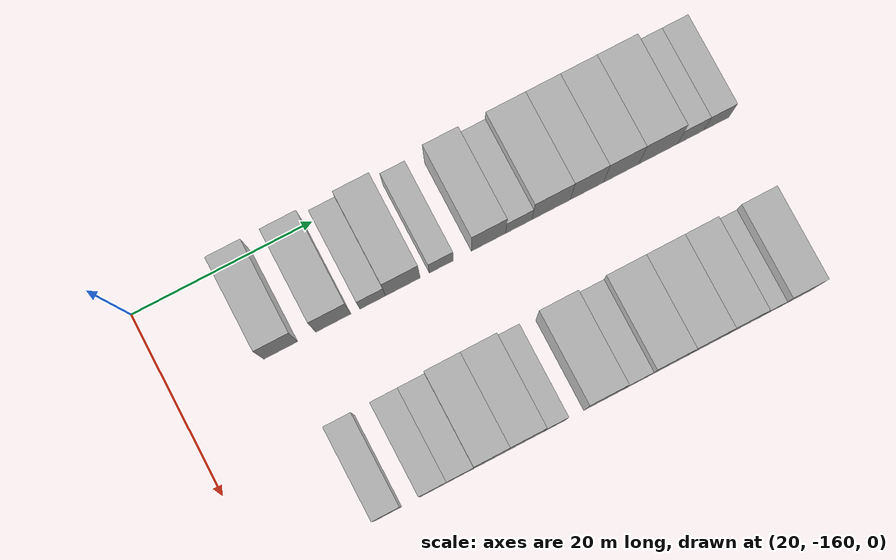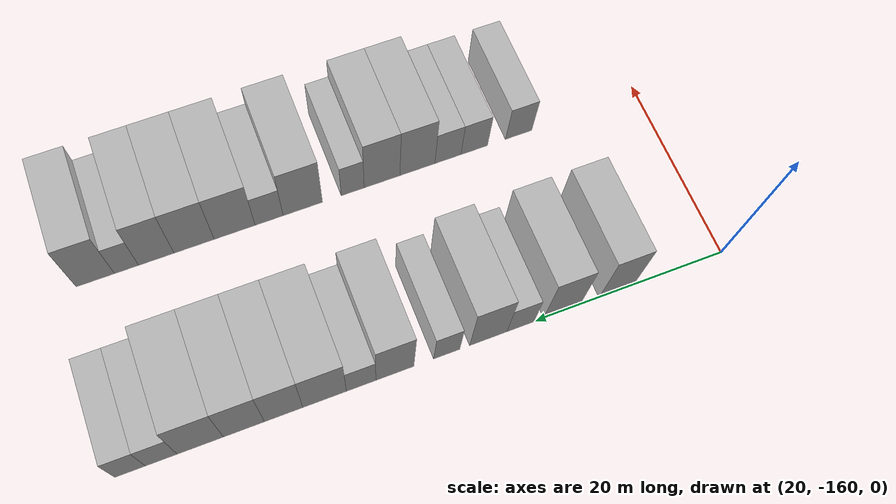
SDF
<sdf version="1.6">
 <world name="default">
  <model name="building_14">
   <static>1</static>
   <pose>25.0000 -148.5535 0 0.000000 0.000000 0.000000</pose>
   <link name="link">
    <pose>0 0 4.50 0 0 0</pose>
    <collision name="collision"><geometry><box><size>10.0000 3.7188 9.0000</size></box></geometry></collision>
    <visual name="visual">
     <cast_shadows>0</cast_shadows>
     <geometry><box><size>10.0000 3.7188 9.0000</size></box></geometry>
     <material>
      <script>
       <uri>model://HANNAS_wall/materials/scripts</uri>
       <uri>model://HANNAS_wall/materials/textures</uri>
       <name>vrc/HANNAS_wall</name>
      </script>
     </material>
    </visual>
   </link>
  </model>
  <model name="building_15">
   <static>1</static>
   <pose>25.0000 -142.7608 0 0.000000 0.000000 0.000000</pose>
   <link name="link">
    <pose>0 0 4.50 0 0 0</pose>
    <collision name="collision"><geometry><box><size>10.0000 3.8666 9.0000</size></box></geometry></collision>
    <visual name="visual">
     <cast_shadows>0</cast_shadows>
     <geometry><box><size>10.0000 3.8666 9.0000</size></box></geometry>
     <material>
      <script>
       <uri>model://HANNAS_wall/materials/scripts</uri>
       <uri>model://HANNAS_wall/materials/textures</uri>
       <name>vrc/HANNAS_wall</name>
      </script>
     </material>
    </visual>
   </link>
  </model>
  <model name="building_16">
   <static>1</static>
   <pose>25.0000 -138.4152 0 0.000000 0.000000 0.000000</pose>
   <link name="link">
    <pose>0 0 3.00 0 0 0</pose>
    <collision name="collision"><geometry><box><size>10.0000 2.8246 6.0000</size></box></geometry></collision>
    <visual name="visual">
     <cast_shadows>0</cast_shadows>
     <geometry><box><size>10.0000 2.8246 6.0000</size></box></geometry>
     <material>
      <script>
       <uri>model://HANNAS_wall/materials/scripts</uri>
       <uri>model://HANNAS_wall/materials/textures</uri>
       <name>vrc/HANNAS_wall</name>
      </script>
     </material>
    </visual>
   </link>
  </model>
  <model name="building_17">
   <static>1</static>
   <pose>25.0000 -135.0712 0 0.000000 0.000000 0.000000</pose>
   <link name="link">
    <pose>0 0 4.50 0 0 0</pose>
    <collision name="collision"><geometry><box><size>10.0000 3.8633 9.0000</size></box></geometry></collision>
    <visual name="visual">
     <cast_shadows>0</cast_shadows>
     <geometry><box><size>10.0000 3.8633 9.0000</size></box></geometry>
     <material>
      <script>
       <uri>model://HANNAS_wall/materials/scripts</uri>
       <uri>model://HANNAS_wall/materials/textures</uri>
       <name>vrc/HANNAS_wall</name>
      </script>
     </material>
    </visual>
   </link>
  </model>
  <model name="building_18">
   <static>1</static>
   <pose>25.0000 -130.7995 0 0.000000 0.000000 0.000000</pose>
   <link name="link">
    <pose>0 0 3.00 0 0 0</pose>
    <collision name="collision"><geometry><box><size>10.0000 2.6801 6.0000</size></box></geometry></collision>
    <visual name="visual">
     <cast_shadows>0</cast_shadows>
     <geometry><box><size>10.0000 2.6801 6.0000</size></box></geometry>
     <material>
      <script>
       <uri>model://HANNAS_wall/materials/scripts</uri>
       <uri>model://HANNAS_wall/materials/textures</uri>
       <name>vrc/HANNAS_wall</name>
      </script>
     </material>
    </visual>
   </link>
  </model>
  <model name="building_19">
   <static>1</static>
   <pose>25.0000 -125.5500 0 0.000000 0.000000 0.000000</pose>
   <link name="link">
    <pose>0 0 4.50 0 0 0</pose>
    <collision name="collision"><geometry><box><size>10.0000 3.8190 9.0000</size></box></geometry></collision>
    <visual name="visual">
     <cast_shadows>0</cast_shadows>
     <geometry><box><size>10.0000 3.8190 9.0000</size></box></geometry>
     <material>
      <script>
       <uri>model://HANNAS_wall/materials/scripts</uri>
       <uri>model://HANNAS_wall/materials/textures</uri>
       <name>vrc/HANNAS_wall</name>
      </script>
     </material>
    </visual>
   </link>
  </model>
  <model name="building_20">
   <static>1</static>
   <pose>25.0000 -122.1705 0 0.000000 0.000000 0.000000</pose>
   <link name="link">
    <pose>0 0 3.00 0 0 0</pose>
    <collision name="collision"><geometry><box><size>10.0000 2.9399 6.0000</size></box></geometry></collision>
    <visual name="visual">
     <cast_shadows>0</cast_shadows>
     <geometry><box><size>10.0000 2.9399 6.0000</size></box></geometry>
     <material>
      <script>
       <uri>model://HANNAS_wall/materials/scripts</uri>
       <uri>model://HANNAS_wall/materials/textures</uri>
       <name>vrc/HANNAS_wall</name>
      </script>
     </material>
    </visual>
   </link>
  </model>
  <model name="building_21">
   <static>1</static>
   <pose>25.0000 -118.5584 0 0.000000 0.000000 0.000000</pose>
   <link name="link">
    <pose>0 0 4.50 0 0 0</pose>
    <collision name="collision"><geometry><box><size>10.0000 4.2843 9.0000</size></box></geometry></collision>
    <visual name="visual">
     <cast_shadows>0</cast_shadows>
     <geometry><box><size>10.0000 4.2843 9.0000</size></box></geometry>
     <material>
      <script>
       <uri>model://HANNAS_wall/materials/scripts</uri>
       <uri>model://HANNAS_wall/materials/textures</uri>
       <name>vrc/HANNAS_wall</name>
      </script>
     </material>
    </visual>
   </link>
  </model>
  <model name="building_22">
   <static>1</static>
   <pose>25.0000 -114.5460 0 0.000000 0.000000 0.000000</pose>
   <link name="link">
    <pose>0 0 4.50 0 0 0</pose>
    <collision name="collision"><geometry><box><size>10.0000 3.7405 9.0000</size></box></geometry></collision>
    <visual name="visual">
     <cast_shadows>0</cast_shadows>
     <geometry><box><size>10.0000 3.7405 9.0000</size></box></geometry>
     <material>
      <script>
       <uri>model://HANNAS_wall/materials/scripts</uri>
       <uri>model://HANNAS_wall/materials/textures</uri>
       <name>vrc/HANNAS_wall</name>
      </script>
     </material>
    </visual>
   </link>
  </model>
  <model name="building_23">
   <static>1</static>
   <pose>25.0000 -110.7014 0 0.000000 0.000000 0.000000</pose>
   <link name="link">
    <pose>0 0 4.50 0 0 0</pose>
    <collision name="collision"><geometry><box><size>10.0000 3.9487 9.0000</size></box></geometry></collision>
    <visual name="visual">
     <cast_shadows>0</cast_shadows>
     <geometry><box><size>10.0000 3.9487 9.0000</size></box></geometry>
     <material>
      <script>
       <uri>model://HANNAS_wall/materials/scripts</uri>
       <uri>model://HANNAS_wall/materials/textures</uri>
       <name>vrc/HANNAS_wall</name>
      </script>
     </material>
    </visual>
   </link>
  </model>
  <model name="building_24">
   <static>1</static>
   <pose>25.0000 -106.5193 0 0.000000 0.000000 0.000000</pose>
   <link name="link">
    <pose>0 0 4.50 0 0 0</pose>
    <collision name="collision"><geometry><box><size>10.0000 4.4155 9.0000</size></box></geometry></collision>
    <visual name="visual">
     <cast_shadows>0</cast_shadows>
     <geometry><box><size>10.0000 4.4155 9.0000</size></box></geometry>
     <material>
      <script>
       <uri>model://HANNAS_wall/materials/scripts</uri>
       <uri>model://HANNAS_wall/materials/textures</uri>
       <name>vrc/HANNAS_wall</name>
      </script>
     </material>
    </visual>
   </link>
  </model>
  <model name="building_25">
   <static>1</static>
   <pose>25.0000 -102.8213 0 0.000000 0.000000 0.000000</pose>
   <link name="link">
    <pose>0 0 3.00 0 0 0</pose>
    <collision name="collision"><geometry><box><size>10.0000 2.9803 6.0000</size></box></geometry></collision>
    <visual name="visual">
     <cast_shadows>0</cast_shadows>
     <geometry><box><size>10.0000 2.9803 6.0000</size></box></geometry>
     <material>
      <script>
       <uri>model://HANNAS_wall/materials/scripts</uri>
       <uri>model://HANNAS_wall/materials/textures</uri>
       <name>vrc/HANNAS_wall</name>
      </script>
     </material>
    </visual>
   </link>
  </model>
  <model name="building_26">
   <static>1</static>
   <pose>25.0000 -99.8959 0 0.000000 0.000000 0.000000</pose>
   <link name="link">
    <pose>0 0 3.00 0 0 0</pose>
    <collision name="collision"><geometry><box><size>10.0000 2.8706 6.0000</size></box></geometry></collision>
    <visual name="visual">
     <cast_shadows>0</cast_shadows>
     <geometry><box><size>10.0000 2.8706 6.0000</size></box></geometry>
     <material>
      <script>
       <uri>model://HANNAS_wall/materials/scripts</uri>
       <uri>model://HANNAS_wall/materials/textures</uri>
       <name>vrc/HANNAS_wall</name>
      </script>
     </material>
    </visual>
   </link>
  </model>
  <model name="building_117">
   <static>1</static>
   <pose>44.0000 -146.5435 0 0.000000 0.000000 0.000000</pose>
   <link name="link">
    <pose>0 0 3.00 0 0 0</pose>
    <collision name="collision"><geometry><box><size>10.0000 2.9709 6.0000</size></box></geometry></collision>
    <visual name="visual">
     <cast_shadows>0</cast_shadows>
     <geometry><box><size>10.0000 2.9709 6.0000</size></box></geometry>
     <material>
      <script>
       <uri>model://HANNAS_wall/materials/scripts</uri>
       <uri>model://HANNAS_wall/materials/textures</uri>
       <name>vrc/HANNAS_wall</name>
      </script>
     </material>
    </visual>
   </link>
  </model>
  <model name="building_118">
   <static>1</static>
   <pose>44.0000 -141.5828 0 0.000000 0.000000 0.000000</pose>
   <link name="link">
    <pose>0 0 3.00 0 0 0</pose>
    <collision name="collision"><geometry><box><size>10.0000 2.9506 6.0000</size></box></geometry></collision>
    <visual name="visual">
     <cast_shadows>0</cast_shadows>
     <geometry><box><size>10.0000 2.9506 6.0000</size></box></geometry>
     <material>
      <script>
       <uri>model://HANNAS_wall/materials/scripts</uri>
       <uri>model://HANNAS_wall/materials/textures</uri>
       <name>vrc/HANNAS_wall</name>
      </script>
     </material>
    </visual>
   </link>
  </model>
  <model name="building_119">
   <static>1</static>
   <pose>44.0000 -138.6603 0 0.000000 0.000000 0.000000</pose>
   <link name="link">
    <pose>0 0 3.00 0 0 0</pose>
    <collision name="collision"><geometry><box><size>10.0000 2.8942 6.0000</size></box></geometry></collision>
    <visual name="visual">
     <cast_shadows>0</cast_shadows>
     <geometry><box><size>10.0000 2.8942 6.0000</size></box></geometry>
     <material>
      <script>
       <uri>model://HANNAS_wall/materials/scripts</uri>
       <uri>model://HANNAS_wall/materials/textures</uri>
       <name>vrc/HANNAS_wall</name>
      </script>
     </material>
    </visual>
   </link>
  </model>
  <model name="building_120">
   <static>1</static>
   <pose>44.0000 -135.2993 0 0.000000 0.000000 0.000000</pose>
   <link name="link">
    <pose>0 0 4.50 0 0 0</pose>
    <collision name="collision"><geometry><box><size>10.0000 3.8279 9.0000</size></box></geometry></collision>
    <visual name="visual">
     <cast_shadows>0</cast_shadows>
     <geometry><box><size>10.0000 3.8279 9.0000</size></box></geometry>
     <material>
      <script>
       <uri>model://HANNAS_wall/materials/scripts</uri>
       <uri>model://HANNAS_wall/materials/textures</uri>
       <name>vrc/HANNAS_wall</name>
      </script>
     </material>
    </visual>
   </link>
  </model>
  <model name="building_121">
   <static>1</static>
   <pose>44.0000 -131.4509 0 0.000000 0.000000 0.000000</pose>
   <link name="link">
    <pose>0 0 4.50 0 0 0</pose>
    <collision name="collision"><geometry><box><size>10.0000 3.8688 9.0000</size></box></geometry></collision>
    <visual name="visual">
     <cast_shadows>0</cast_shadows>
     <geometry><box><size>10.0000 3.8688 9.0000</size></box></geometry>
     <material>
      <script>
       <uri>model://HANNAS_wall/materials/scripts</uri>
       <uri>model://HANNAS_wall/materials/textures</uri>
       <name>vrc/HANNAS_wall</name>
      </script>
     </material>
    </visual>
   </link>
  </model>
  <model name="building_122">
   <static>1</static>
   <pose>44.0000 -128.2875 0 0.000000 0.000000 0.000000</pose>
   <link name="link">
    <pose>0 0 3.00 0 0 0</pose>
    <collision name="collision"><geometry><box><size>10.0000 2.4580 6.0000</size></box></geometry></collision>
    <visual name="visual">
     <cast_shadows>0</cast_shadows>
     <geometry><box><size>10.0000 2.4580 6.0000</size></box></geometry>
     <material>
      <script>
       <uri>model://HANNAS_wall/materials/scripts</uri>
       <uri>model://HANNAS_wall/materials/textures</uri>
       <name>vrc/HANNAS_wall</name>
      </script>
     </material>
    </visual>
   </link>
  </model>
  <model name="building_123">
   <static>1</static>
   <pose>44.0000 -122.9733 0 0.000000 0.000000 0.000000</pose>
   <link name="link">
    <pose>0 0 4.50 0 0 0</pose>
    <collision name="collision"><geometry><box><size>10.0000 4.1703 9.0000</size></box></geometry></collision>
    <visual name="visual">
     <cast_shadows>0</cast_shadows>
     <geometry><box><size>10.0000 4.1703 9.0000</size></box></geometry>
     <material>
      <script>
       <uri>model://HANNAS_wall/materials/scripts</uri>
       <uri>model://HANNAS_wall/materials/textures</uri>
       <name>vrc/HANNAS_wall</name>
      </script>
     </material>
    </visual>
   </link>
  </model>
  <model name="building_124">
   <static>1</static>
   <pose>44.0000 -119.4177 0 0.000000 0.000000 0.000000</pose>
   <link name="link">
    <pose>0 0 3.00 0 0 0</pose>
    <collision name="collision"><geometry><box><size>10.0000 2.9409 6.0000</size></box></geometry></collision>
    <visual name="visual">
     <cast_shadows>0</cast_shadows>
     <geometry><box><size>10.0000 2.9409 6.0000</size></box></geometry>
     <material>
      <script>
       <uri>model://HANNAS_wall/materials/scripts</uri>
       <uri>model://HANNAS_wall/materials/textures</uri>
       <name>vrc/HANNAS_wall</name>
      </script>
     </material>
    </visual>
   </link>
  </model>
  <model name="building_125">
   <static>1</static>
   <pose>44.0000 -115.8198 0 0.000000 0.000000 0.000000</pose>
   <link name="link">
    <pose>0 0 4.50 0 0 0</pose>
    <collision name="collision"><geometry><box><size>10.0000 4.2550 9.0000</size></box></geometry></collision>
    <visual name="visual">
     <cast_shadows>0</cast_shadows>
     <geometry><box><size>10.0000 4.2550 9.0000</size></box></geometry>
     <material>
      <script>
       <uri>model://HANNAS_wall/materials/scripts</uri>
       <uri>model://HANNAS_wall/materials/textures</uri>
       <name>vrc/HANNAS_wall</name>
      </script>
     </material>
    </visual>
   </link>
  </model>
  <model name="building_126">
   <static>1</static>
   <pose>44.0000 -111.6314 0 0.000000 0.000000 0.000000</pose>
   <link name="link">
    <pose>0 0 4.50 0 0 0</pose>
    <collision name="collision"><geometry><box><size>10.0000 4.1218 9.0000</size></box></geometry></collision>
    <visual name="visual">
     <cast_shadows>0</cast_shadows>
     <geometry><box><size>10.0000 4.1218 9.0000</size></box></geometry>
     <material>
      <script>
       <uri>model://HANNAS_wall/materials/scripts</uri>
       <uri>model://HANNAS_wall/materials/textures</uri>
       <name>vrc/HANNAS_wall</name>
      </script>
     </material>
    </visual>
   </link>
  </model>
  <model name="building_127">
   <static>1</static>
   <pose>44.0000 -107.7674 0 0.000000 0.000000 0.000000</pose>
   <link name="link">
    <pose>0 0 4.50 0 0 0</pose>
    <collision name="collision"><geometry><box><size>10.0000 3.6062 9.0000</size></box></geometry></collision>
    <visual name="visual">
     <cast_shadows>0</cast_shadows>
     <geometry><box><size>10.0000 3.6062 9.0000</size></box></geometry>
     <material>
      <script>
       <uri>model://HANNAS_wall/materials/scripts</uri>
       <uri>model://HANNAS_wall/materials/textures</uri>
       <name>vrc/HANNAS_wall</name>
      </script>
     </material>
    </visual>
   </link>
  </model>
  <model name="building_128">
   <static>1</static>
   <pose>44.0000 -104.7466 0 0.000000 0.000000 0.000000</pose>
   <link name="link">
    <pose>0 0 3.00 0 0 0</pose>
    <collision name="collision"><geometry><box><size>10.0000 2.4354 6.0000</size></box></geometry></collision>
    <visual name="visual">
     <cast_shadows>0</cast_shadows>
     <geometry><box><size>10.0000 2.4354 6.0000</size></box></geometry>
     <material>
      <script>
       <uri>model://HANNAS_wall/materials/scripts</uri>
       <uri>model://HANNAS_wall/materials/textures</uri>
       <name>vrc/HANNAS_wall</name>
      </script>
     </material>
    </visual>
   </link>
  </model>
  <model name="building_129">
   <static>1</static>
   <pose>44.0000 -101.6099 0 0.000000 0.000000 0.000000</pose>
   <link name="link">
    <pose>0 0 4.50 0 0 0</pose>
    <collision name="collision"><geometry><box><size>10.0000 3.8379 9.0000</size></box></geometry></collision>
    <visual name="visual">
     <cast_shadows>0</cast_shadows>
     <geometry><box><size>10.0000 3.8379 9.0000</size></box></geometry>
     <material>
      <script>
       <uri>model://HANNAS_wall/materials/scripts</uri>
       <uri>model://HANNAS_wall/materials/textures</uri>
       <name>vrc/HANNAS_wall</name>
      </script>
     </material>
    </visual>
   </link>
  </model>
 </world>
</sdf>
